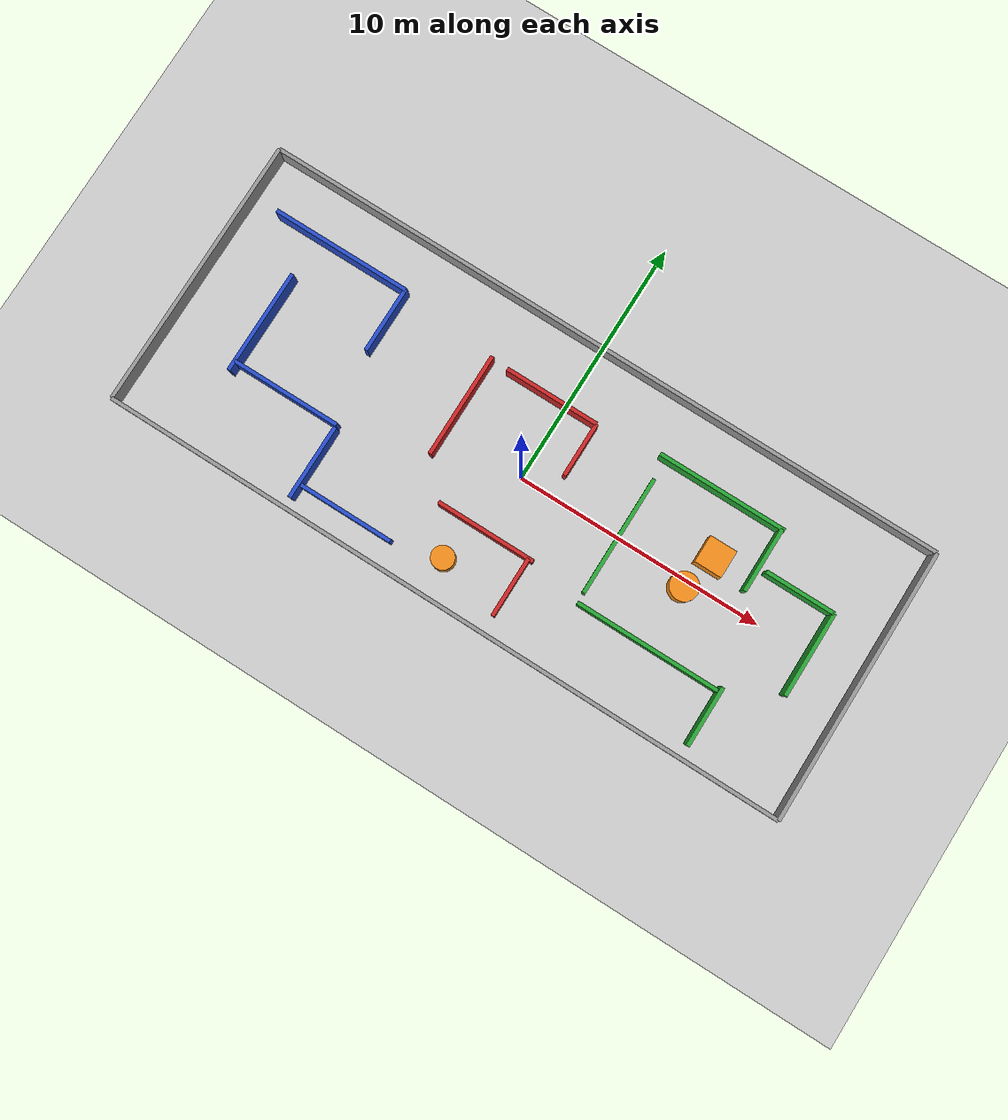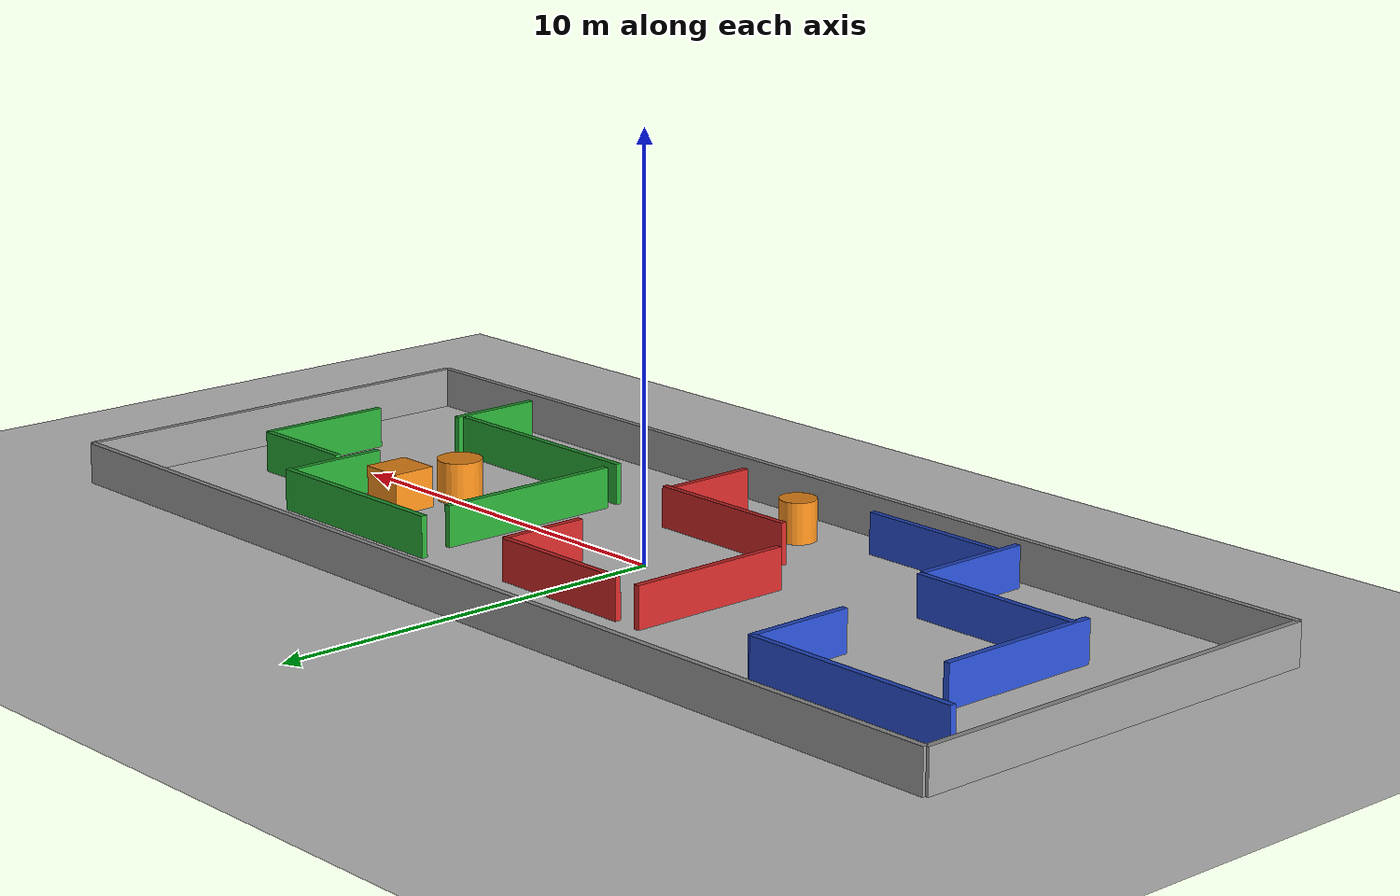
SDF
<sdf version='1.7'>
  <world name='fish_complex'>
    <light name='sun' type='directional'>
      <cast_shadows>1</cast_shadows>
      <pose>0 0 10 0 0 0</pose>
      <diffuse>0.8 0.8 0.8 1</diffuse>
      <specular>0.2 0.2 0.2 1</specular>
      <attenuation>
        <range>1000</range>
        <constant>0.9</constant>
        <linear>0.01</linear>
        <quadratic>0.001</quadratic>
      </attenuation>
      <direction>-0.5 0.1 -0.9</direction>
    </light>

    <model name='ground_plane'>
      <static>1</static>
      <link name='link'>
        <collision name='collision'>
          <geometry>
            <plane>
              <normal>0 0 1</normal>
              <size>100 100</size>
            </plane>
          </geometry>
          <surface>
            <friction>
              <ode>
                <mu>100</mu>
                <mu2>50</mu2>
              </ode>
            </friction>
          </surface>
        </collision>
        <visual name='visual'>
          <cast_shadows>0</cast_shadows>
          <geometry>
            <plane>
              <normal>0 0 1</normal>
              <size>100 100</size>
            </plane>
          </geometry>
          <material>
            <script>
              <uri>file://media/materials/scripts/gazebo.material</uri>
              <name>Gazebo/Grey</name>
            </script>
          </material>
        </visual>
      </link>
    </model>

    <model name='complex_fishwall'>
      <static>1</static>
      <link name='south_boundary'>
        <pose>0 -5.5 0 0 0 0</pose>
        <collision name='collision'><geometry><box><size>28 0.15 1</size></box></geometry><pose>0 0 0.5 0 0 0</pose></collision>
        <visual name='visual'><geometry><box><size>28 0.15 1</size></box></geometry><pose>0 0 0.5 0 0 0</pose><material><script><uri>file://media/materials/scripts/gazebo.material</uri><name>Gazebo/Grey</name></script><ambient>1 1 1 1</ambient></material></visual>
      </link>
      <link name='north_boundary'>
        <pose>0 5.5 0 0 0 0</pose>
        <collision name='collision'><geometry><box><size>28 0.15 1</size></box></geometry><pose>0 0 0.5 0 0 0</pose></collision>
        <visual name='visual'><geometry><box><size>28 0.15 1</size></box></geometry><pose>0 0 0.5 0 0 0</pose><material><script><uri>file://media/materials/scripts/gazebo.material</uri><name>Gazebo/Grey</name></script><ambient>1 1 1 1</ambient></material></visual>
      </link>
      <link name='west_boundary'>
        <pose>-14 0 0 0 0 0</pose>
        <collision name='collision'><geometry><box><size>0.15 11 1</size></box></geometry><pose>0 0 0.5 0 0 0</pose></collision>
        <visual name='visual'><geometry><box><size>0.15 11 1</size></box></geometry><pose>0 0 0.5 0 0 0</pose><material><script><uri>file://media/materials/scripts/gazebo.material</uri><name>Gazebo/Grey</name></script><ambient>1 1 1 1</ambient></material></visual>
      </link>
      <link name='east_boundary'>
        <pose>14 0 0 0 0 0</pose>
        <collision name='collision'><geometry><box><size>0.15 11 1</size></box></geometry><pose>0 0 0.5 0 0 0</pose></collision>
        <visual name='visual'><geometry><box><size>0.15 11 1</size></box></geometry><pose>0 0 0.5 0 0 0</pose><material><script><uri>file://media/materials/scripts/gazebo.material</uri><name>Gazebo/Grey</name></script><ambient>1 1 1 1</ambient></material></visual>
      </link>

      <link name='west_upper_corridor'>
        <pose>-10 3.5 0 0 0 0</pose>
        <collision name='collision'><geometry><box><size>5.6 0.15 1</size></box></geometry><pose>0 0 0.5 0 0 0</pose></collision>
        <visual name='visual'><geometry><box><size>5.6 0.15 1</size></box></geometry><pose>0 0 0.5 0 0 0</pose><material><script><uri>file://media/materials/scripts/gazebo.material</uri><name>Gazebo/Blue</name></script></material></visual>
      </link>
      <link name='west_upper_turn'>
        <pose>-7.2 2.2 0 0 0 0</pose>
        <collision name='collision'><geometry><box><size>0.15 2.7 1</size></box></geometry><pose>0 0 0.5 0 0 0</pose></collision>
        <visual name='visual'><geometry><box><size>0.15 2.7 1</size></box></geometry><pose>0 0 0.5 0 0 0</pose><material><script><uri>file://media/materials/scripts/gazebo.material</uri><name>Gazebo/Blue</name></script></material></visual>
      </link>
      <link name='west_center_divider'>
        <pose>-11 -0.3 0 0 0 0</pose>
        <collision name='collision'><geometry><box><size>0.15 4.2 1</size></box></geometry><pose>0 0 0.5 0 0 0</pose></collision>
        <visual name='visual'><geometry><box><size>0.15 4.2 1</size></box></geometry><pose>0 0 0.5 0 0 0</pose><material><script><uri>file://media/materials/scripts/gazebo.material</uri><name>Gazebo/Blue</name></script></material></visual>
      </link>
      <link name='west_lower_corridor'>
        <pose>-8.8 -2 0 0 0 0</pose>
        <collision name='collision'><geometry><box><size>4.4 0.15 1</size></box></geometry><pose>0 0 0.5 0 0 0</pose></collision>
        <visual name='visual'><geometry><box><size>4.4 0.15 1</size></box></geometry><pose>0 0 0.5 0 0 0</pose><material><script><uri>file://media/materials/scripts/gazebo.material</uri><name>Gazebo/Blue</name></script></material></visual>
      </link>
      <link name='west_lower_turn'>
        <pose>-6.6 -3.6 0 0 0 0</pose>
        <collision name='collision'><geometry><box><size>0.15 3 1</size></box></geometry><pose>0 0 0.5 0 0 0</pose></collision>
        <visual name='visual'><geometry><box><size>0.15 3 1</size></box></geometry><pose>0 0 0.5 0 0 0</pose><material><script><uri>file://media/materials/scripts/gazebo.material</uri><name>Gazebo/Blue</name></script></material></visual>
      </link>
      <link name='west_lower_dead_end'>
        <pose>-4.6 -4.5 0 0 0 0</pose>
        <collision name='collision'><geometry><box><size>3.8 0.15 1</size></box></geometry><pose>0 0 0.5 0 0 0</pose></collision>
        <visual name='visual'><geometry><box><size>3.8 0.15 1</size></box></geometry><pose>0 0 0.5 0 0 0</pose><material><script><uri>file://media/materials/scripts/gazebo.material</uri><name>Gazebo/Blue</name></script></material></visual>
      </link>

      <link name='central_left_divider'>
        <pose>-3.2 1 0 0 0 0</pose>
        <collision name='collision'><geometry><box><size>0.15 4.2 1</size></box></geometry><pose>0 0 0.5 0 0 0</pose></collision>
        <visual name='visual'><geometry><box><size>0.15 4.2 1</size></box></geometry><pose>0 0 0.5 0 0 0</pose><material><script><uri>file://media/materials/scripts/gazebo.material</uri><name>Gazebo/Red</name></script></material></visual>
      </link>
      <link name='central_top_corridor'>
        <pose>-0.6 3 0 0 0 0</pose>
        <collision name='collision'><geometry><box><size>3.8 0.15 1</size></box></geometry><pose>0 0 0.5 0 0 0</pose></collision>
        <visual name='visual'><geometry><box><size>3.8 0.15 1</size></box></geometry><pose>0 0 0.5 0 0 0</pose><material><script><uri>file://media/materials/scripts/gazebo.material</uri><name>Gazebo/Red</name></script></material></visual>
      </link>
      <link name='central_top_turn'>
        <pose>1.3 1.9 0 0 0 0</pose>
        <collision name='collision'><geometry><box><size>0.15 2.2 1</size></box></geometry><pose>0 0 0.5 0 0 0</pose></collision>
        <visual name='visual'><geometry><box><size>0.15 2.2 1</size></box></geometry><pose>0 0 0.5 0 0 0</pose><material><script><uri>file://media/materials/scripts/gazebo.material</uri><name>Gazebo/Red</name></script></material></visual>
      </link>
      <link name='central_lower_corridor'>
        <pose>0 -2.4 0 0 0 0</pose>
        <collision name='collision'><geometry><box><size>4 0.15 1</size></box></geometry><pose>0 0 0.5 0 0 0</pose></collision>
        <visual name='visual'><geometry><box><size>4 0.15 1</size></box></geometry><pose>0 0 0.5 0 0 0</pose><material><script><uri>file://media/materials/scripts/gazebo.material</uri><name>Gazebo/Red</name></script></material></visual>
      </link>
      <link name='central_lower_turn'>
        <pose>1.8 -3.6 0 0 0 0</pose>
        <collision name='collision'><geometry><box><size>0.15 2.4 1</size></box></geometry><pose>0 0 0.5 0 0 0</pose></collision>
        <visual name='visual'><geometry><box><size>0.15 2.4 1</size></box></geometry><pose>0 0 0.5 0 0 0</pose><material><script><uri>file://media/materials/scripts/gazebo.material</uri><name>Gazebo/Red</name></script></material></visual>
      </link>

      <link name='east_center_divider'>
        <pose>4.1 0 0 0 0 0</pose>
        <collision name='collision'><geometry><box><size>0.15 4.8 1</size></box></geometry><pose>0 0 0.5 0 0 0</pose></collision>
        <visual name='visual'><geometry><box><size>0.15 4.8 1</size></box></geometry><pose>0 0 0.5 0 0 0</pose><material><script><uri>file://media/materials/scripts/gazebo.material</uri><name>Gazebo/Green</name></script></material></visual>
      </link>
      <link name='east_upper_corridor'>
        <pose>6.4 3.3 0 0 0 0</pose>
        <collision name='collision'><geometry><box><size>5.2 0.15 1</size></box></geometry><pose>0 0 0.5 0 0 0</pose></collision>
        <visual name='visual'><geometry><box><size>5.2 0.15 1</size></box></geometry><pose>0 0 0.5 0 0 0</pose><material><script><uri>file://media/materials/scripts/gazebo.material</uri><name>Gazebo/Green</name></script></material></visual>
      </link>
      <link name='east_upper_turn'>
        <pose>8.9 2 0 0 0 0</pose>
        <collision name='collision'><geometry><box><size>0.15 2.6 1</size></box></geometry><pose>0 0 0.5 0 0 0</pose></collision>
        <visual name='visual'><geometry><box><size>0.15 2.6 1</size></box></geometry><pose>0 0 0.5 0 0 0</pose><material><script><uri>file://media/materials/scripts/gazebo.material</uri><name>Gazebo/Green</name></script></material></visual>
      </link>
      <link name='east_lower_corridor'>
        <pose>7 -2.8 0 0 0 0</pose>
        <collision name='collision'><geometry><box><size>5.8 0.15 1</size></box></geometry><pose>0 0 0.5 0 0 0</pose></collision>
        <visual name='visual'><geometry><box><size>5.8 0.15 1</size></box></geometry><pose>0 0 0.5 0 0 0</pose><material><script><uri>file://media/materials/scripts/gazebo.material</uri><name>Gazebo/Green</name></script></material></visual>
      </link>
      <link name='east_lower_turn'>
        <pose>10 -3.8 0 0 0 0</pose>
        <collision name='collision'><geometry><box><size>0.15 2.4 1</size></box></geometry><pose>0 0 0.5 0 0 0</pose></collision>
        <visual name='visual'><geometry><box><size>0.15 2.4 1</size></box></geometry><pose>0 0 0.5 0 0 0</pose><material><script><uri>file://media/materials/scripts/gazebo.material</uri><name>Gazebo/Green</name></script></material></visual>
      </link>
      <link name='east_alcove_divider'>
        <pose>12 0 0 0 0 0</pose>
        <collision name='collision'><geometry><box><size>0.15 3.4 1</size></box></geometry><pose>0 0 0.5 0 0 0</pose></collision>
        <visual name='visual'><geometry><box><size>0.15 3.4 1</size></box></geometry><pose>0 0 0.5 0 0 0</pose><material><script><uri>file://media/materials/scripts/gazebo.material</uri><name>Gazebo/Green</name></script></material></visual>
      </link>
      <link name='east_alcove_wall'>
        <pose>10.6 1.7 0 0 0 0</pose>
        <collision name='collision'><geometry><box><size>2.8 0.15 1</size></box></geometry><pose>0 0 0.5 0 0 0</pose></collision>
        <visual name='visual'><geometry><box><size>2.8 0.15 1</size></box></geometry><pose>0 0 0.5 0 0 0</pose><material><script><uri>file://media/materials/scripts/gazebo.material</uri><name>Gazebo/Green</name></script></material></visual>
      </link>

      <link name='round_obstacle_one'>
        <pose>7 -0.3 0 0 0 0</pose>
        <collision name='collision'><geometry><cylinder><radius>0.55</radius><length>1</length></cylinder></geometry><pose>0 0 0.5 0 0 0</pose></collision>
        <visual name='visual'><geometry><cylinder><radius>0.55</radius><length>1</length></cylinder></geometry><pose>0 0 0.5 0 0 0</pose><material><script><uri>file://media/materials/scripts/gazebo.material</uri><name>Gazebo/Orange</name></script></material></visual>
      </link>
      <link name='round_obstacle_two'>
        <pose>-0.8 -4 0 0 0 0</pose>
        <collision name='collision'><geometry><cylinder><radius>0.45</radius><length>1</length></cylinder></geometry><pose>0 0 0.5 0 0 0</pose></collision>
        <visual name='visual'><geometry><cylinder><radius>0.45</radius><length>1</length></cylinder></geometry><pose>0 0 0.5 0 0 0</pose><material><script><uri>file://media/materials/scripts/gazebo.material</uri><name>Gazebo/Orange</name></script></material></visual>
      </link>
      <link name='square_obstacle'>
        <pose>7.4 1.2 0 0 0 0</pose>
        <collision name='collision'><geometry><box><size>1.1 1.1 1</size></box></geometry><pose>0 0 0.5 0 0 0</pose></collision>
        <visual name='visual'><geometry><box><size>1.1 1.1 1</size></box></geometry><pose>0 0 0.5 0 0 0</pose><material><script><uri>file://media/materials/scripts/gazebo.material</uri><name>Gazebo/Orange</name></script></material></visual>
      </link>
    </model>

    <gravity>0 0 -9.8</gravity>
    <magnetic_field>6e-06 2.3e-05 -4.2e-05</magnetic_field>
    <atmosphere type='adiabatic'/>
    <physics type='ode'>
      <max_step_size>0.001</max_step_size>
      <real_time_factor>1</real_time_factor>
      <real_time_update_rate>1000</real_time_update_rate>
    </physics>
    <scene>
      <ambient>0.4 0.4 0.4 1</ambient>
      <background>0.7 0.7 0.7 1</background>
      <shadows>1</shadows>
    </scene>
    <gui fullscreen='0'>
      <camera name='user_camera'>
        <pose>0 0 29 0 1.5698 0</pose>
        <view_controller>orbit</view_controller>
        <projection_type>perspective</projection_type>
      </camera>
    </gui>
  </world>
</sdf>
